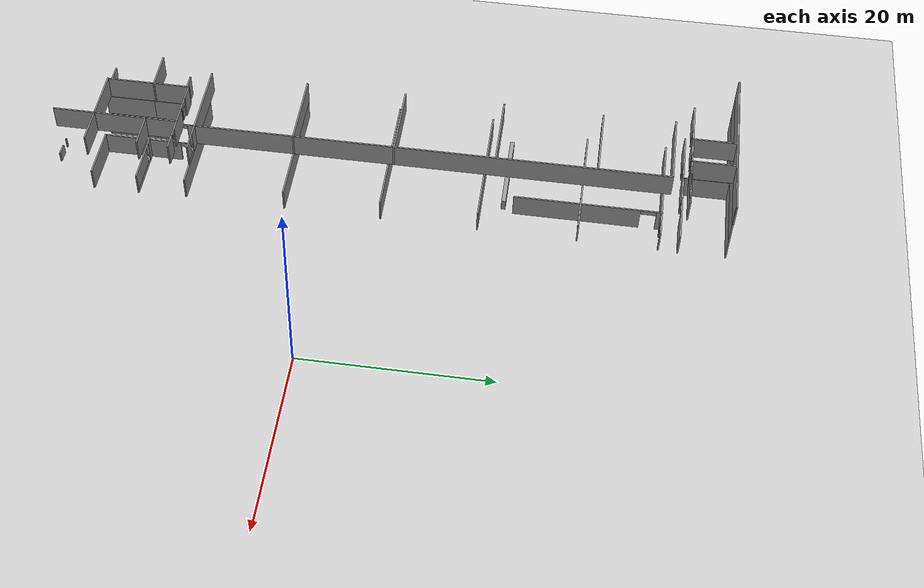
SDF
<sdf version="1.7">
 <world name="default">
  <model name="ground_plane">
   <static>1</static>
   <link name="link">
    <collision name="collision">
     <geometry><plane><normal>0 0 1</normal><size>100 100</size></plane></geometry>
     <surface><friction><ode><mu>100</mu><mu2>50</mu2></ode></friction></surface>
    </collision>
    <visual name="visual">
     <cast_shadows>0</cast_shadows>
     <geometry><plane><normal>0 0 1</normal><size>100 100</size></plane></geometry>
     <material>
      <script><uri>file://media/materials/scripts/gazebo.material</uri><name>Gazebo/Grey</name></script>
     </material>
    </visual>
   </link>
  </model>
  <model name="Anselm_Turmeda">
   <pose>-32.7988 -2.37459 0 0 -0 0</pose>
   <link name="Wall_108">
    <collision name="Wall_108_Collision">
     <geometry><box><size>4.5 0.15 2.5</size></box></geometry>
     <pose>0 0 1.25 0 -0 0</pose>
    </collision>
    <visual name="Wall_108_Visual">
     <pose>0 0 1.25 0 -0 0</pose>
     <geometry><box><size>4.5 0.15 2.5</size></box></geometry>
     <material>
      <script><uri>file://media/materials/scripts/gazebo.material</uri><name>Gazebo/Grey</name></script>
      <ambient>1 1 1 1</ambient>
     </material>
     <meta><layer>2</layer></meta>
    </visual>
    <pose>9.50762 -25.2569 5 0 -0 1.5708</pose>
   </link>
   <link name="Wall_109">
    <collision name="Wall_109_Collision">
     <geometry><box><size>3.86611 0.15 2.5</size></box></geometry>
     <pose>0 0 1.25 0 -0 0</pose>
    </collision>
    <visual name="Wall_109_Visual">
     <pose>0 0 1.25 0 -0 0</pose>
     <geometry><box><size>3.86611 0.15 2.5</size></box></geometry>
     <material>
      <script><uri>file://media/materials/scripts/gazebo.material</uri><name>Gazebo/Grey</name></script>
      <ambient>1 1 1 1</ambient>
     </material>
     <meta><layer>2</layer></meta>
    </visual>
    <pose>11.3657 -23.0772 5 0 -0 0.002537</pose>
   </link>
   <link name="Wall_111">
    <collision name="Wall_111_Collision">
     <geometry><box><size>5.5 0.15 2.5</size></box></geometry>
     <pose>0 0 1.25 0 -0 0</pose>
    </collision>
    <visual name="Wall_111_Visual">
     <pose>0 0 1.25 0 -0 0</pose>
     <geometry><box><size>5.5 0.15 2.5</size></box></geometry>
     <material>
      <script><uri>file://media/materials/scripts/gazebo.material</uri><name>Gazebo/Grey</name></script>
      <ambient>1 1 1 1</ambient>
     </material>
     <meta><layer>2</layer></meta>
    </visual>
    <pose>6.83262 -23.0819 5 0 -0 3.14159</pose>
   </link>
   <link name="Wall_113">
    <collision name="Wall_113_Collision">
     <geometry><box><size>9 0.15 2.5</size></box></geometry>
     <pose>0 0 1.25 0 -0 0</pose>
    </collision>
    <visual name="Wall_113_Visual">
     <pose>0 0 1.25 0 -0 0</pose>
     <geometry><box><size>9 0.15 2.5</size></box></geometry>
     <material>
      <script><uri>file://media/materials/scripts/gazebo.material</uri><name>Gazebo/Grey</name></script>
      <ambient>1 1 1 1</ambient>
     </material>
     <meta><layer>2</layer></meta>
    </visual>
    <pose>4.15762 -18.6569 5 0 -0 1.5708</pose>
   </link>
   <link name="Wall_118">
    <collision name="Wall_118_Collision">
     <geometry><box><size>8.95378 0.15 2.5</size></box></geometry>
     <pose>0 0 1.25 0 -0 0</pose>
    </collision>
    <visual name="Wall_118_Visual">
     <pose>0 0 1.25 0 -0 0</pose>
     <geometry><box><size>8.95378 0.15 2.5</size></box></geometry>
     <material>
      <script><uri>file://media/materials/scripts/gazebo.material</uri><name>Gazebo/Grey</name></script>
      <ambient>1 1 1 1</ambient>
     </material>
     <meta><layer>2</layer></meta>
    </visual>
    <pose>9.51774 -18.6801 5 0 -0 -1.5731</pose>
   </link>
   <link name="Wall_123">
    <collision name="Wall_123_Collision">
     <geometry><box><size>3.75 0.15 2.5</size></box></geometry>
     <pose>0 0 1.25 0 -0 0</pose>
    </collision>
    <visual name="Wall_123_Visual">
     <pose>0 0 1.25 0 -0 0</pose>
     <geometry><box><size>3.75 0.15 2.5</size></box></geometry>
     <material>
      <script><uri>file://media/materials/scripts/gazebo.material</uri><name>Gazebo/Grey</name></script>
      <ambient>1 1 1 1</ambient>
     </material>
     <meta><layer>2</layer></meta>
    </visual>
    <pose>11.3279 -17.5796 5 0 -0 0</pose>
   </link>
   <link name="Wall_127">
    <pose>8.70762 -14.2319 5 0 -0 0</pose>
    <visual name="Wall_127_Visual_0">
     <pose>-3.65426 0 1.25 0 -0 0</pose>
     <geometry><box><size>1.94148 0.15 2.5</size></box></geometry>
     <material>
      <script><uri>file://media/materials/scripts/gazebo.material</uri><name>Gazebo/Grey</name></script>
      <ambient>1 1 1 1</ambient>
     </material>
     <meta><layer>2</layer></meta>
    </visual>
    <collision name="Wall_127_Collision_0">
     <geometry><box><size>1.94148 0.15 2.5</size></box></geometry>
     <pose>-3.65426 0 1.25 0 -0 0</pose>
    </collision>
    <visual name="Wall_127_Visual_1">
     <pose>0.489756 0 1.25 0 -0 0</pose>
     <geometry><box><size>3.12036 0.15 2.5</size></box></geometry>
     <material>
      <script><uri>file://media/materials/scripts/gazebo.material</uri><name>Gazebo/Grey</name></script>
      <ambient>1 1 1 1</ambient>
     </material>
     <meta><layer>2</layer></meta>
    </visual>
    <collision name="Wall_127_Collision_1">
     <geometry><box><size>3.12036 0.15 2.5</size></box></geometry>
     <pose>0.489756 0 1.25 0 -0 0</pose>
    </collision>
    <visual name="Wall_127_Visual_2">
     <pose>3.78747 0 1.25 0 -0 0</pose>
     <geometry><box><size>1.67506 0.15 2.5</size></box></geometry>
     <material>
      <script><uri>file://media/materials/scripts/gazebo.material</uri><name>Gazebo/Grey</name></script>
      <ambient>1 1 1 1</ambient>
     </material>
     <meta><layer>2</layer></meta>
    </visual>
    <collision name="Wall_127_Collision_2">
     <geometry><box><size>1.67506 0.15 2.5</size></box></geometry>
     <pose>3.78747 0 1.25 0 -0 0</pose>
    </collision>
    <visual name="Wall_127_Visual_3">
     <pose>-1.87697 0 2.25 0 -0 0</pose>
     <geometry><box><size>1.61309 0.15 0.5</size></box></geometry>
     <material>
      <script><uri>file://media/materials/scripts/gazebo.material</uri><name>Gazebo/Grey</name></script>
      <ambient>1 1 1 1</ambient>
     </material>
     <meta><layer>2</layer></meta>
    </visual>
    <collision name="Wall_127_Collision_3">
     <geometry><box><size>1.61309 0.15 0.5</size></box></geometry>
     <pose>-1.87697 0 2.25 0 -0 0</pose>
    </collision>
    <visual name="Wall_127_Visual_4">
     <pose>2.49994 0 2.25 0 -0 0</pose>
     <geometry><box><size>0.9 0.15 0.5</size></box></geometry>
     <material>
      <script><uri>file://media/materials/scripts/gazebo.material</uri><name>Gazebo/Grey</name></script>
      <ambient>1 1 1 1</ambient>
     </material>
     <meta><layer>2</layer></meta>
    </visual>
    <collision name="Wall_127_Collision_4">
     <geometry><box><size>0.9 0.15 0.5</size></box></geometry>
     <pose>2.49994 0 2.25 0 -0 0</pose>
    </collision>
   </link>
   <link name="Wall_136">
    <collision name="Wall_136_Collision">
     <geometry><box><size>2 0.15 1.3</size></box></geometry>
     <pose>0 0 0.65 0 -0 0</pose>
    </collision>
    <visual name="Wall_136_Visual">
     <pose>0 0 0.65 0 -0 0</pose>
     <geometry><box><size>2 0.15 1.3</size></box></geometry>
     <material>
      <script><uri>file://media/materials/scripts/gazebo.material</uri><name>Gazebo/Grey</name></script>
      <ambient>1 1 1 1</ambient>
     </material>
     <meta><layer>2</layer></meta>
    </visual>
    <pose>2.1346 -23.1338 5 0 -0 0</pose>
   </link>
   <link name="Wall_138">
    <collision name="Wall_138_Collision">
     <geometry><box><size>5.38746 0.15 2.5</size></box></geometry>
     <pose>0 0 1.25 0 -0 0</pose>
    </collision>
    <visual name="Wall_138_Visual">
     <pose>0 0 1.25 0 -0 0</pose>
     <geometry><box><size>5.38746 0.15 2.5</size></box></geometry>
     <material>
      <script><uri>file://media/materials/scripts/gazebo.material</uri><name>Gazebo/Grey</name></script>
      <ambient>1 1 1 1</ambient>
     </material>
     <meta><layer>0</layer></meta>
    </visual>
    <pose>3.22999 -20.7685 0 0 -0 -1.5708</pose>
   </link>
   <link name="Wall_139">
    <collision name="Wall_139_Collision">
     <geometry><box><size>1.75 0.15 2.5</size></box></geometry>
     <pose>0 0 1.25 0 -0 0</pose>
    </collision>
    <visual name="Wall_139_Visual">
     <pose>0 0 1.25 0 -0 0</pose>
     <geometry><box><size>1.75 0.15 2.5</size></box></geometry>
     <material>
      <script><uri>file://media/materials/scripts/gazebo.material</uri><name>Gazebo/Grey</name></script>
      <ambient>1 1 1 1</ambient>
     </material>
     <meta><layer>0</layer></meta>
    </visual>
    <pose>4.02999 -23.4033 0 0 -0 0</pose>
   </link>
   <link name="Wall_140">
    <collision name="Wall_140_Collision">
     <geometry><box><size>5.38746 0.15 2.5</size></box></geometry>
     <pose>0 0 1.25 0 -0 0</pose>
    </collision>
    <visual name="Wall_140_Visual">
     <pose>0 0 1.25 0 -0 0</pose>
     <geometry><box><size>5.38746 0.15 2.5</size></box></geometry>
     <material>
      <script><uri>file://media/materials/scripts/gazebo.material</uri><name>Gazebo/Grey</name></script>
      <ambient>1 1 1 1</ambient>
     </material>
     <meta><layer>0</layer></meta>
    </visual>
    <pose>4.82999 -20.7685 0 0 -0 1.5708</pose>
   </link>
   <link name="Wall_141">
    <collision name="Wall_141_Collision">
     <geometry><box><size>1.75 0.15 2.5</size></box></geometry>
     <pose>0 0 1.25 0 -0 0</pose>
    </collision>
    <visual name="Wall_141_Visual">
     <pose>0 0 1.25 0 -0 0</pose>
     <geometry><box><size>1.75 0.15 2.5</size></box></geometry>
     <material>
      <script><uri>file://media/materials/scripts/gazebo.material</uri><name>Gazebo/Grey</name></script>
      <ambient>1 1 1 1</ambient>
     </material>
     <meta><layer>0</layer></meta>
    </visual>
    <pose>4.02999 -18.1497 0 0 -0 3.14159</pose>
   </link>
   <link name="Wall_159">
    <collision name="Wall_159_Collision">
     <geometry><box><size>5.5 0.15 2.5</size></box></geometry>
     <pose>0 0 1.25 0 -0 0</pose>
    </collision>
    <visual name="Wall_159_Visual">
     <pose>0 0 1.25 0 -0 0</pose>
     <geometry><box><size>5.5 0.15 2.5</size></box></geometry>
     <material>
      <script><uri>file://media/materials/scripts/gazebo.material</uri><name>Gazebo/Grey</name></script>
      <ambient>1 1 1 1</ambient>
     </material>
     <meta><layer>1</layer></meta>
    </visual>
    <pose>3.17231 -20.8133 2.5 0 -0 -1.5708</pose>
   </link>
   <link name="Wall_160">
    <collision name="Wall_160_Collision">
     <geometry><box><size>1.2 0.15 2.5</size></box></geometry>
     <pose>0 0 1.25 0 -0 0</pose>
    </collision>
    <visual name="Wall_160_Visual">
     <pose>0 0 1.25 0 -0 0</pose>
     <geometry><box><size>1.2 0.15 2.5</size></box></geometry>
     <material>
      <script><uri>file://media/materials/scripts/gazebo.material</uri><name>Gazebo/Grey</name></script>
      <ambient>1 1 1 1</ambient>
     </material>
     <meta><layer>1</layer></meta>
    </visual>
    <pose>3.69731 -23.4883 2.5 0 -0 0</pose>
   </link>
   <link name="Wall_164">
    <collision name="Wall_164_Collision">
     <geometry><box><size>5.5 0.15 2.5</size></box></geometry>
     <pose>0 0 1.25 0 -0 0</pose>
    </collision>
    <visual name="Wall_164_Visual">
     <pose>0 0 1.25 0 -0 0</pose>
     <geometry><box><size>5.5 0.15 2.5</size></box></geometry>
     <material>
      <script><uri>file://media/materials/scripts/gazebo.material</uri><name>Gazebo/Grey</name></script>
      <ambient>1 1 1 1</ambient>
     </material>
     <meta><layer>1</layer></meta>
    </visual>
    <pose>4.22231 -20.8133 2.5 0 -0 1.5708</pose>
   </link>
   <link name="Wall_166">
    <collision name="Wall_166_Collision">
     <geometry><box><size>3 0.15 2.5</size></box></geometry>
     <pose>0 0 1.25 0 -0 0</pose>
    </collision>
    <visual name="Wall_166_Visual">
     <pose>0 0 1.25 0 -0 0</pose>
     <geometry><box><size>3 0.15 2.5</size></box></geometry>
     <material>
      <script><uri>file://media/materials/scripts/gazebo.material</uri><name>Gazebo/Grey</name></script>
      <ambient>1 1 1 1</ambient>
     </material>
     <meta><layer>1</layer></meta>
    </visual>
    <pose>4.22231 -16.7133 2.5 0 -0 1.5708</pose>
   </link>
   <link name="Wall_167">
    <collision name="Wall_167_Collision">
     <geometry><box><size>4.35 0.15 2.5</size></box></geometry>
     <pose>0 0 1.25 0 -0 0</pose>
    </collision>
    <visual name="Wall_167_Visual">
     <pose>0 0 1.25 0 -0 0</pose>
     <geometry><box><size>4.35 0.15 2.5</size></box></geometry>
     <material>
      <script><uri>file://media/materials/scripts/gazebo.material</uri><name>Gazebo/Grey</name></script>
      <ambient>1 1 1 1</ambient>
     </material>
     <meta><layer>1</layer></meta>
    </visual>
    <pose>2.12231 -15.2883 2.5 0 -0 3.14159</pose>
   </link>
   <link name="Wall_174">
    <collision name="Wall_174_Collision">
     <geometry><box><size>4.25 0.15 2.5</size></box></geometry>
     <pose>0 0 1.25 0 -0 0</pose>
    </collision>
    <visual name="Wall_174_Visual">
     <pose>0 0 1.25 0 -0 0</pose>
     <geometry><box><size>4.25 0.15 2.5</size></box></geometry>
     <material>
      <script><uri>file://media/materials/scripts/gazebo.material</uri><name>Gazebo/Grey</name></script>
      <ambient>1 1 1 1</ambient>
     </material>
     <meta><layer>2</layer></meta>
    </visual>
    <pose>2.1416 -18.0224 5 0 -0 0</pose>
   </link>
   <link name="Wall_288">
    <pose>7.47873 -12.2331 5 0 -0 0</pose>
    <visual name="Wall_288_Visual_0">
     <pose>-1.00158 0 1.25 0 -0 0</pose>
     <geometry><box><size>9.49685 0.15 2.5</size></box></geometry>
     <material>
      <script><uri>file://media/materials/scripts/gazebo.material</uri><name>Gazebo/Grey</name></script>
      <ambient>1 1 1 1</ambient>
     </material>
     <meta><layer>2</layer></meta>
    </visual>
    <collision name="Wall_288_Collision_0">
     <geometry><box><size>9.49685 0.15 2.5</size></box></geometry>
     <pose>-1.00158 0 1.25 0 -0 0</pose>
    </collision>
    <visual name="Wall_288_Visual_1">
     <pose>4.74843 0 0.25 0 -0 0</pose>
     <geometry><box><size>2.00315 0.15 0.5</size></box></geometry>
     <material>
      <script><uri>file://media/materials/scripts/gazebo.material</uri><name>Gazebo/Grey</name></script>
      <ambient>1 1 1 1</ambient>
     </material>
     <meta><layer>2</layer></meta>
    </visual>
    <collision name="Wall_288_Collision_1">
     <geometry><box><size>2.00315 0.15 0.5</size></box></geometry>
     <pose>4.74843 0 0.25 0 -0 0</pose>
    </collision>
    <visual name="Wall_288_Visual_2">
     <pose>5.14842 0 1.5 0 -0 0</pose>
     <geometry><box><size>1.20315 0.15 2</size></box></geometry>
     <material>
      <script><uri>file://media/materials/scripts/gazebo.material</uri><name>Gazebo/Grey</name></script>
      <ambient>1 1 1 1</ambient>
     </material>
     <meta><layer>2</layer></meta>
    </visual>
    <collision name="Wall_288_Collision_2">
     <geometry><box><size>1.20315 0.15 2</size></box></geometry>
     <pose>5.14842 0 1.5 0 -0 0</pose>
    </collision>
    <visual name="Wall_288_Visual_3">
     <pose>4.14685 0 1.9 0 -0 0</pose>
     <geometry><box><size>0.8 0.15 1.2</size></box></geometry>
     <material>
      <script><uri>file://media/materials/scripts/gazebo.material</uri><name>Gazebo/Grey</name></script>
      <ambient>1 1 1 1</ambient>
     </material>
     <meta><layer>2</layer></meta>
    </visual>
    <collision name="Wall_288_Collision_3">
     <geometry><box><size>0.8 0.15 1.2</size></box></geometry>
     <pose>4.14685 0 1.9 0 -0 0</pose>
    </collision>
   </link>
   <link name="Wall_292">
    <collision name="Wall_292_Collision">
     <geometry><box><size>8.25 0.15 2.5</size></box></geometry>
     <pose>0 0 1.25 0 -0 0</pose>
    </collision>
    <visual name="Wall_292_Visual">
     <pose>0 0 1.25 0 -0 0</pose>
     <geometry><box><size>8.25 0.15 2.5</size></box></geometry>
     <material>
      <script><uri>file://media/materials/scripts/gazebo.material</uri><name>Gazebo/Grey</name></script>
      <ambient>1 1 1 1</ambient>
     </material>
     <meta><layer>2</layer></meta>
    </visual>
    <pose>5.85373 37.3669 5 0 -0 0</pose>
   </link>
   <link name="Wall_293">
    <collision name="Wall_293_Collision">
     <geometry><box><size>49.75 0.15 2.5</size></box></geometry>
     <pose>0 0 1.25 0 -0 0</pose>
    </collision>
    <visual name="Wall_293_Visual">
     <pose>0 0 1.25 0 -0 0</pose>
     <geometry><box><size>49.75 0.15 2.5</size></box></geometry>
     <material>
      <script><uri>file://media/materials/scripts/gazebo.material</uri><name>Gazebo/Grey</name></script>
      <ambient>1 1 1 1</ambient>
     </material>
     <meta><layer>2</layer></meta>
    </visual>
    <pose>9.90373 12.5669 5 0 -0 -1.5708</pose>
   </link>
   <link name="Wall_296">
    <collision name="Wall_296_Collision">
     <geometry><box><size>18.75 0.15 2.5</size></box></geometry>
     <pose>0 0 1.25 0 -0 0</pose>
    </collision>
    <visual name="Wall_296_Visual">
     <pose>0 0 1.25 0 -0 0</pose>
     <geometry><box><size>18.75 0.15 2.5</size></box></geometry>
     <material>
      <script><uri>file://media/materials/scripts/gazebo.material</uri><name>Gazebo/Grey</name></script>
      <ambient>1 1 1 1</ambient>
     </material>
     <meta><layer>2</layer></meta>
    </visual>
    <pose>3.95762 43.8181 5 0 -0 3.14159</pose>
   </link>
   <link name="Wall_317">
    <collision name="Wall_317_Collision">
     <geometry><box><size>8.25 0.15 2.5</size></box></geometry>
     <pose>0 0 1.25 0 -0 0</pose>
    </collision>
    <visual name="Wall_317_Visual">
     <pose>0 0 1.25 0 -0 0</pose>
     <geometry><box><size>8.25 0.15 2.5</size></box></geometry>
     <material>
      <script><uri>file://media/materials/scripts/gazebo.material</uri><name>Gazebo/Grey</name></script>
      <ambient>1 1 1 1</ambient>
     </material>
     <meta><layer>2</layer></meta>
    </visual>
    <pose>5.86435 -1.77019 5 0 -0 0</pose>
   </link>
   <link name="Wall_331">
    <collision name="Wall_331_Collision">
     <geometry><box><size>8.25 0.15 2.5</size></box></geometry>
     <pose>0 0 1.25 0 -0 0</pose>
    </collision>
    <visual name="Wall_331_Visual">
     <pose>0 0 1.25 0 -0 0</pose>
     <geometry><box><size>8.25 0.15 2.5</size></box></geometry>
     <material>
      <script><uri>file://media/materials/scripts/gazebo.material</uri><name>Gazebo/Grey</name></script>
      <ambient>1 1 1 1</ambient>
     </material>
     <meta><layer>2</layer></meta>
    </visual>
    <pose>5.88502 8.80092 5 0 -0 0</pose>
   </link>
   <link name="Wall_337">
    <collision name="Wall_337_Collision">
     <geometry><box><size>8.2 0.15 2.5</size></box></geometry>
     <pose>0 0 1.25 0 -0 0</pose>
    </collision>
    <visual name="Wall_337_Visual">
     <pose>0 0 1.25 0 -0 0</pose>
     <geometry><box><size>8.2 0.15 2.5</size></box></geometry>
     <material>
      <script><uri>file://media/materials/scripts/gazebo.material</uri><name>Gazebo/Grey</name></script>
      <ambient>1 1 1 1</ambient>
     </material>
     <meta><layer>2</layer></meta>
    </visual>
    <pose>5.85075 19.3252 5 0 -0 3.14159</pose>
   </link>
   <link name="Wall_34">
    <collision name="Wall_34_Collision">
     <geometry><box><size>18.75 0.15 2.5</size></box></geometry>
     <pose>0 0 1.25 0 -0 0</pose>
    </collision>
    <visual name="Wall_34_Visual">
     <pose>0 0 1.25 0 -0 0</pose>
     <geometry><box><size>18.75 0.15 2.5</size></box></geometry>
     <material>
      <script><uri>file://media/materials/scripts/gazebo.material</uri><name>Gazebo/Grey</name></script>
      <ambient>1 1 1 1</ambient>
     </material>
     <meta><layer>1</layer></meta>
    </visual>
    <pose>3.92372 43.7775 2.5 0 -0 3.14159</pose>
   </link>
   <link name="Wall_345">
    <collision name="Wall_345_Collision">
     <geometry><box><size>8 0.15 2.5</size></box></geometry>
     <pose>0 0 1.25 0 -0 0</pose>
    </collision>
    <visual name="Wall_345_Visual">
     <pose>0 0 1.25 0 -0 0</pose>
     <geometry><box><size>8 0.15 2.5</size></box></geometry>
     <material>
      <script><uri>file://media/materials/scripts/gazebo.material</uri><name>Gazebo/Grey</name></script>
      <ambient>1 1 1 1</ambient>
     </material>
     <meta><layer>2</layer></meta>
    </visual>
    <pose>5.86895 29.8064 5 0 -0 0</pose>
   </link>
   <link name="Wall_348">
    <pose>6.29714 39.203 5 0 -0 0</pose>
    <visual name="Wall_348_Visual_0">
     <pose>-5.28289 0 1.25 0 -0 0</pose>
     <geometry><box><size>3.43422 0.15 2.5</size></box></geometry>
     <material>
      <script><uri>file://media/materials/scripts/gazebo.material</uri><name>Gazebo/Grey</name></script>
      <ambient>1 1 1 1</ambient>
     </material>
     <meta><layer>2</layer></meta>
    </visual>
    <collision name="Wall_348_Collision_0">
     <geometry><box><size>3.43422 0.15 2.5</size></box></geometry>
     <pose>-5.28289 0 1.25 0 -0 0</pose>
    </collision>
    <visual name="Wall_348_Visual_1">
     <pose>-1.12725 0 1.25 0 -0 0</pose>
     <geometry><box><size>2.41151 0.15 2.5</size></box></geometry>
     <material>
      <script><uri>file://media/materials/scripts/gazebo.material</uri><name>Gazebo/Grey</name></script>
      <ambient>1 1 1 1</ambient>
     </material>
     <meta><layer>2</layer></meta>
    </visual>
    <collision name="Wall_348_Collision_1">
     <geometry><box><size>2.41151 0.15 2.5</size></box></geometry>
     <pose>-1.12725 0 1.25 0 -0 0</pose>
    </collision>
    <visual name="Wall_348_Visual_2">
     <pose>4.06872 0 1.25 0 -0 0</pose>
     <geometry><box><size>5.86257 0.15 2.5</size></box></geometry>
     <material>
      <script><uri>file://media/materials/scripts/gazebo.material</uri><name>Gazebo/Grey</name></script>
      <ambient>1 1 1 1</ambient>
     </material>
     <meta><layer>2</layer></meta>
    </visual>
    <collision name="Wall_348_Collision_2">
     <geometry><box><size>5.86257 0.15 2.5</size></box></geometry>
     <pose>4.06872 0 1.25 0 -0 0</pose>
    </collision>
    <visual name="Wall_348_Visual_3">
     <pose>4.59441 0 1.25 0 -0 0</pose>
     <geometry><box><size>4.81119 0.15 2.5</size></box></geometry>
     <material>
      <script><uri>file://media/materials/scripts/gazebo.material</uri><name>Gazebo/Grey</name></script>
      <ambient>1 1 1 1</ambient>
     </material>
     <meta><layer>2</layer></meta>
    </visual>
    <collision name="Wall_348_Collision_3">
     <geometry><box><size>4.81119 0.15 2.5</size></box></geometry>
     <pose>4.59441 0 1.25 0 -0 0</pose>
    </collision>
    <visual name="Wall_348_Visual_4">
     <pose>-2.94939 0 2.25 0 -0 0</pose>
     <geometry><box><size>1.23279 0.15 0.5</size></box></geometry>
     <material>
      <script><uri>file://media/materials/scripts/gazebo.material</uri><name>Gazebo/Grey</name></script>
      <ambient>1 1 1 1</ambient>
     </material>
     <meta><layer>2</layer></meta>
    </visual>
    <collision name="Wall_348_Collision_4">
     <geometry><box><size>1.23279 0.15 0.5</size></box></geometry>
     <pose>-2.94939 0 2.25 0 -0 0</pose>
    </collision>
    <visual name="Wall_348_Visual_5">
     <pose>0.591968 0 2.25 0 -0 0</pose>
     <geometry><box><size>1.02692 0.15 0.5</size></box></geometry>
     <material>
      <script><uri>file://media/materials/scripts/gazebo.material</uri><name>Gazebo/Grey</name></script>
      <ambient>1 1 1 1</ambient>
     </material>
     <meta><layer>2</layer></meta>
    </visual>
    <collision name="Wall_348_Collision_5">
     <geometry><box><size>1.02692 0.15 0.5</size></box></geometry>
     <pose>0.591968 0 2.25 0 -0 0</pose>
    </collision>
   </link>
   <link name="Wall_350">
    <collision name="Wall_350_Collision">
     <geometry><box><size>4.75 0.15 2.5</size></box></geometry>
     <pose>0 0 1.25 0 -0 0</pose>
    </collision>
    <visual name="Wall_350_Visual">
     <pose>0 0 1.25 0 -0 0</pose>
     <geometry><box><size>4.75 0.15 2.5</size></box></geometry>
     <material>
      <script><uri>file://media/materials/scripts/gazebo.material</uri><name>Gazebo/Grey</name></script>
      <ambient>1 1 1 1</ambient>
     </material>
     <meta><layer>2</layer></meta>
    </visual>
    <pose>4.07065 41.503 5 0 -0 -1.5708</pose>
   </link>
   <link name="Wall_352">
    <collision name="Wall_352_Collision">
     <geometry><box><size>4.75 0.15 2.5</size></box></geometry>
     <pose>0 0 1.25 0 -0 0</pose>
    </collision>
    <visual name="Wall_352_Visual">
     <pose>0 0 1.25 0 -0 0</pose>
     <geometry><box><size>4.75 0.15 2.5</size></box></geometry>
     <material>
      <script><uri>file://media/materials/scripts/gazebo.material</uri><name>Gazebo/Grey</name></script>
      <ambient>1 1 1 1</ambient>
     </material>
     <meta><layer>2</layer></meta>
    </visual>
    <pose>7.33488 41.503 5 0 -0 -1.5708</pose>
   </link>
   <link name="Wall_453">
    <pose>8.7461 -27.7018 0 0 -0 -0.017648</pose>
    <visual name="Wall_453_Visual_0">
     <pose>-1.08593 0 0.6 0 -0 0</pose>
     <geometry><box><size>0.131085 0.15 1.2</size></box></geometry>
     <material>
      <script><uri>file://media/materials/scripts/gazebo.material</uri><name>Gazebo/Grey</name></script>
      <ambient>1 1 1 1</ambient>
     </material>
     <meta><layer>0</layer></meta>
    </visual>
    <collision name="Wall_453_Collision_0">
     <geometry><box><size>0.131085 0.15 1.2</size></box></geometry>
     <pose>-1.08593 0 0.6 0 -0 0</pose>
    </collision>
    <visual name="Wall_453_Visual_1">
     <pose>0.515543 0 0.6 0 -0 0</pose>
     <geometry><box><size>1.27185 0.15 1.2</size></box></geometry>
     <material>
      <script><uri>file://media/materials/scripts/gazebo.material</uri><name>Gazebo/Grey</name></script>
      <ambient>1 1 1 1</ambient>
     </material>
     <meta><layer>0</layer></meta>
    </visual>
    <collision name="Wall_453_Collision_1">
     <geometry><box><size>1.27185 0.15 1.2</size></box></geometry>
     <pose>0.515543 0 0.6 0 -0 0</pose>
    </collision>
   </link>
   <link name="Wall_487">
    <collision name="Wall_487_Collision">
     <geometry><box><size>5.75 0.15 2.5</size></box></geometry>
     <pose>0 0 1.25 0 -0 0</pose>
    </collision>
    <visual name="Wall_487_Visual">
     <pose>0 0 1.25 0 -0 0</pose>
     <geometry><box><size>5.75 0.15 2.5</size></box></geometry>
     <material>
      <script><uri>file://media/materials/scripts/gazebo.material</uri><name>Gazebo/Grey</name></script>
      <ambient>1 1 1 1</ambient>
     </material>
     <meta><layer>0</layer></meta>
    </visual>
    <pose>10.4237 -23.0725 0 0 -0 3.14159</pose>
   </link>
   <link name="Wall_488">
    <collision name="Wall_488_Collision">
     <geometry><box><size>5 0.15 2.5</size></box></geometry>
     <pose>0 0 1.25 0 -0 0</pose>
    </collision>
    <visual name="Wall_488_Visual">
     <pose>0 0 1.25 0 -0 0</pose>
     <geometry><box><size>5 0.15 2.5</size></box></geometry>
     <material>
      <script><uri>file://media/materials/scripts/gazebo.material</uri><name>Gazebo/Grey</name></script>
      <ambient>1 1 1 1</ambient>
     </material>
     <meta><layer>0</layer></meta>
    </visual>
    <pose>7.62372 -20.6475 0 0 -0 1.5708</pose>
   </link>
   <link name="Wall_489">
    <pose>10.4237 -18.2225 0 0 -0 0</pose>
    <visual name="Wall_489_Visual_0">
     <pose>-2.47666 0 1.25 0 -0 0</pose>
     <geometry><box><size>0.796684 0.15 2.5</size></box></geometry>
     <material>
      <script><uri>file://media/materials/scripts/gazebo.material</uri><name>Gazebo/Grey</name></script>
      <ambient>1 1 1 1</ambient>
     </material>
     <meta><layer>0</layer></meta>
    </visual>
    <collision name="Wall_489_Collision_0">
     <geometry><box><size>0.796684 0.15 2.5</size></box></geometry>
     <pose>-2.47666 0 1.25 0 -0 0</pose>
    </collision>
    <visual name="Wall_489_Visual_1">
     <pose>0.398342 0 0.25 0 -0 0</pose>
     <geometry><box><size>4.95332 0.15 0.5</size></box></geometry>
     <material>
      <script><uri>file://media/materials/scripts/gazebo.material</uri><name>Gazebo/Grey</name></script>
      <ambient>1 1 1 1</ambient>
     </material>
     <meta><layer>0</layer></meta>
    </visual>
    <collision name="Wall_489_Collision_1">
     <geometry><box><size>4.95332 0.15 0.5</size></box></geometry>
     <pose>0.398342 0 0.25 0 -0 0</pose>
    </collision>
    <visual name="Wall_489_Visual_2">
     <pose>0.798342 0 1.5 0 -0 0</pose>
     <geometry><box><size>4.15332 0.15 2</size></box></geometry>
     <material>
      <script><uri>file://media/materials/scripts/gazebo.material</uri><name>Gazebo/Grey</name></script>
      <ambient>1 1 1 1</ambient>
     </material>
     <meta><layer>0</layer></meta>
    </visual>
    <collision name="Wall_489_Collision_2">
     <geometry><box><size>4.15332 0.15 2</size></box></geometry>
     <pose>0.798342 0 1.5 0 -0 0</pose>
    </collision>
    <visual name="Wall_489_Visual_3">
     <pose>-1.67832 0 1.9 0 -0 0</pose>
     <geometry><box><size>0.8 0.15 1.2</size></box></geometry>
     <material>
      <script><uri>file://media/materials/scripts/gazebo.material</uri><name>Gazebo/Grey</name></script>
      <ambient>1 1 1 1</ambient>
     </material>
     <meta><layer>0</layer></meta>
    </visual>
    <collision name="Wall_489_Collision_3">
     <geometry><box><size>0.8 0.15 1.2</size></box></geometry>
     <pose>-1.67832 0 1.9 0 -0 0</pose>
    </collision>
   </link>
   <link name="Wall_491">
    <collision name="Wall_491_Collision">
     <geometry><box><size>2.25 0.15 2.5</size></box></geometry>
     <pose>0 0 1.25 0 -0 0</pose>
    </collision>
    <visual name="Wall_491_Visual">
     <pose>0 0 1.25 0 -0 0</pose>
     <geometry><box><size>2.25 0.15 2.5</size></box></geometry>
     <material>
      <script><uri>file://media/materials/scripts/gazebo.material</uri><name>Gazebo/Grey</name></script>
      <ambient>1 1 1 1</ambient>
     </material>
     <meta><layer>0</layer></meta>
    </visual>
    <pose>2.17999 -18.1497 0 0 -0 3.14159</pose>
   </link>
   <link name="Wall_493">
    <collision name="Wall_493_Collision">
     <geometry><box><size>12.25 0.15 2.5</size></box></geometry>
     <pose>0 0 1.25 0 -0 0</pose>
    </collision>
    <visual name="Wall_493_Visual">
     <pose>0 0 1.25 0 -0 0</pose>
     <geometry><box><size>12.25 0.15 2.5</size></box></geometry>
     <material>
      <script><uri>file://media/materials/scripts/gazebo.material</uri><name>Gazebo/Grey</name></script>
      <ambient>1 1 1 1</ambient>
     </material>
     <meta><layer>0</layer></meta>
    </visual>
    <pose>7.02907 -13.0674 0 0 -0 0</pose>
   </link>
   <link name="Wall_503">
    <pose>6.87748 36.8636 0 0 -0 0</pose>
    <visual name="Wall_503_Visual_0">
     <pose>-0.91274 0 1.25 0 -0 0</pose>
     <geometry><box><size>10.9245 0.15 2.5</size></box></geometry>
     <material>
      <script><uri>file://media/materials/scripts/gazebo.material</uri><name>Gazebo/Grey</name></script>
      <ambient>1 1 1 1</ambient>
     </material>
     <meta><layer>0</layer></meta>
    </visual>
    <collision name="Wall_503_Collision_0">
     <geometry><box><size>10.9245 0.15 2.5</size></box></geometry>
     <pose>-0.91274 0 1.25 0 -0 0</pose>
    </collision>
    <visual name="Wall_503_Visual_1">
     <pose>6.19023 0 1.25 0 -0 0</pose>
     <geometry><box><size>0.369546 0.15 2.5</size></box></geometry>
     <material>
      <script><uri>file://media/materials/scripts/gazebo.material</uri><name>Gazebo/Grey</name></script>
      <ambient>1 1 1 1</ambient>
     </material>
     <meta><layer>0</layer></meta>
    </visual>
    <collision name="Wall_503_Collision_1">
     <geometry><box><size>0.369546 0.15 2.5</size></box></geometry>
     <pose>6.19023 0 1.25 0 -0 0</pose>
    </collision>
    <visual name="Wall_503_Visual_2">
     <pose>5.27749 0 2.25 0 -0 0</pose>
     <geometry><box><size>1.45593 0.15 0.5</size></box></geometry>
     <material>
      <script><uri>file://media/materials/scripts/gazebo.material</uri><name>Gazebo/Grey</name></script>
      <ambient>1 1 1 1</ambient>
     </material>
     <meta><layer>0</layer></meta>
    </visual>
    <collision name="Wall_503_Collision_2">
     <geometry><box><size>1.45593 0.15 0.5</size></box></geometry>
     <pose>5.27749 0 2.25 0 -0 0</pose>
    </collision>
   </link>
   <link name="Wall_506">
    <pose>6.09981 38.8761 0 0 -0 0</pose>
    <visual name="Wall_506_Visual_0">
     <pose>-5.30619 0 1.25 0 -0 0</pose>
     <geometry><box><size>3.88763 0.15 2.5</size></box></geometry>
     <material>
      <script><uri>file://media/materials/scripts/gazebo.material</uri><name>Gazebo/Grey</name></script>
      <ambient>1 1 1 1</ambient>
     </material>
     <meta><layer>0</layer></meta>
    </visual>
    <collision name="Wall_506_Collision_0">
     <geometry><box><size>3.88763 0.15 2.5</size></box></geometry>
     <pose>-5.30619 0 1.25 0 -0 0</pose>
    </collision>
    <visual name="Wall_506_Visual_1">
     <pose>-0.051662 0 1.25 0 -0 0</pose>
     <geometry><box><size>3.4522 0.15 2.5</size></box></geometry>
     <material>
      <script><uri>file://media/materials/scripts/gazebo.material</uri><name>Gazebo/Grey</name></script>
      <ambient>1 1 1 1</ambient>
     </material>
     <meta><layer>0</layer></meta>
    </visual>
    <collision name="Wall_506_Collision_1">
     <geometry><box><size>3.4522 0.15 2.5</size></box></geometry>
     <pose>-0.051662 0 1.25 0 -0 0</pose>
    </collision>
    <visual name="Wall_506_Visual_2">
     <pose>5.41345 0 1.25 0 -0 0</pose>
     <geometry><box><size>3.67309 0.15 2.5</size></box></geometry>
     <material>
      <script><uri>file://media/materials/scripts/gazebo.material</uri><name>Gazebo/Grey</name></script>
      <ambient>1 1 1 1</ambient>
     </material>
     <meta><layer>0</layer></meta>
    </visual>
    <collision name="Wall_506_Collision_2">
     <geometry><box><size>3.67309 0.15 2.5</size></box></geometry>
     <pose>5.41345 0 1.25 0 -0 0</pose>
    </collision>
    <visual name="Wall_506_Visual_3">
     <pose>-2.57007 0 2.25 0 -0 0</pose>
     <geometry><box><size>1.58462 0.15 0.5</size></box></geometry>
     <material>
      <script><uri>file://media/materials/scripts/gazebo.material</uri><name>Gazebo/Grey</name></script>
      <ambient>1 1 1 1</ambient>
     </material>
     <meta><layer>0</layer></meta>
    </visual>
    <collision name="Wall_506_Collision_3">
     <geometry><box><size>1.58462 0.15 0.5</size></box></geometry>
     <pose>-2.57007 0 2.25 0 -0 0</pose>
    </collision>
    <visual name="Wall_506_Visual_4">
     <pose>2.62567 0 2.25 0 -0 0</pose>
     <geometry><box><size>1.90247 0.15 0.5</size></box></geometry>
     <material>
      <script><uri>file://media/materials/scripts/gazebo.material</uri><name>Gazebo/Grey</name></script>
      <ambient>1 1 1 1</ambient>
     </material>
     <meta><layer>0</layer></meta>
    </visual>
    <collision name="Wall_506_Collision_4">
     <geometry><box><size>1.90247 0.15 0.5</size></box></geometry>
     <pose>2.62567 0 2.25 0 -0 0</pose>
    </collision>
   </link>
   <link name="Wall_519">
    <collision name="Wall_519_Collision">
     <geometry><box><size>5 0.15 2.5</size></box></geometry>
     <pose>0 0 1.25 0 -0 0</pose>
    </collision>
    <visual name="Wall_519_Visual">
     <pose>0 0 1.25 0 -0 0</pose>
     <geometry><box><size>5 0.15 2.5</size></box></geometry>
     <material>
      <script><uri>file://media/materials/scripts/gazebo.material</uri><name>Gazebo/Grey</name></script>
      <ambient>1 1 1 1</ambient>
     </material>
     <meta><layer>0</layer></meta>
    </visual>
    <pose>4.83785 41.3158 0 0 -0 1.5708</pose>
   </link>
   <link name="Wall_521">
    <pose>6.88346 28.4748 0 0 -0 0</pose>
    <visual name="Wall_521_Visual_0">
     <pose>-4.95694 0 1.25 0 -0 0</pose>
     <geometry><box><size>2.83612 0.15 2.5</size></box></geometry>
     <material>
      <script><uri>file://media/materials/scripts/gazebo.material</uri><name>Gazebo/Grey</name></script>
      <ambient>1 1 1 1</ambient>
     </material>
     <meta><layer>0</layer></meta>
    </visual>
    <collision name="Wall_521_Collision_0">
     <geometry><box><size>2.83612 0.15 2.5</size></box></geometry>
     <pose>-4.95694 0 1.25 0 -0 0</pose>
    </collision>
    <visual name="Wall_521_Visual_1">
     <pose>2.81257 0 1.25 0 -0 0</pose>
     <geometry><box><size>4.2317 0.15 2.5</size></box></geometry>
     <material>
      <script><uri>file://media/materials/scripts/gazebo.material</uri><name>Gazebo/Grey</name></script>
      <ambient>1 1 1 1</ambient>
     </material>
     <meta><layer>0</layer></meta>
    </visual>
    <collision name="Wall_521_Collision_1">
     <geometry><box><size>4.2317 0.15 2.5</size></box></geometry>
     <pose>2.81257 0 1.25 0 -0 0</pose>
    </collision>
    <visual name="Wall_521_Visual_2">
     <pose>6.20862 0 1.25 0 -0 0</pose>
     <geometry><box><size>0.332759 0.15 2.5</size></box></geometry>
     <material>
      <script><uri>file://media/materials/scripts/gazebo.material</uri><name>Gazebo/Grey</name></script>
      <ambient>1 1 1 1</ambient>
     </material>
     <meta><layer>0</layer></meta>
    </visual>
    <collision name="Wall_521_Collision_2">
     <geometry><box><size>0.332759 0.15 2.5</size></box></geometry>
     <pose>6.20862 0 1.25 0 -0 0</pose>
    </collision>
    <visual name="Wall_521_Visual_3">
     <pose>-1.42108 0 2.25 0 -0 0</pose>
     <geometry><box><size>4.2356 0.15 0.5</size></box></geometry>
     <material>
      <script><uri>file://media/materials/scripts/gazebo.material</uri><name>Gazebo/Grey</name></script>
      <ambient>1 1 1 1</ambient>
     </material>
     <meta><layer>0</layer></meta>
    </visual>
    <collision name="Wall_521_Collision_3">
     <geometry><box><size>4.2356 0.15 0.5</size></box></geometry>
     <pose>-1.42108 0 2.25 0 -0 0</pose>
    </collision>
    <visual name="Wall_521_Visual_4">
     <pose>5.48533 0 2.25 0 -0 0</pose>
     <geometry><box><size>1.11382 0.15 0.5</size></box></geometry>
     <material>
      <script><uri>file://media/materials/scripts/gazebo.material</uri><name>Gazebo/Grey</name></script>
      <ambient>1 1 1 1</ambient>
     </material>
     <meta><layer>0</layer></meta>
    </visual>
    <collision name="Wall_521_Collision_4">
     <geometry><box><size>1.11382 0.15 0.5</size></box></geometry>
     <pose>5.48533 0 2.25 0 -0 0</pose>
    </collision>
   </link>
   <link name="Wall_523">
    <pose>10.2427 29.2194 0 0 -0 -1.5708</pose>
    <visual name="Wall_523_Visual_0">
     <pose>-7.43391 0 1.25 0 -0 0</pose>
     <geometry><box><size>0.632171 0.15 2.5</size></box></geometry>
     <material>
      <script><uri>file://media/materials/scripts/gazebo.material</uri><name>Gazebo/Grey</name></script>
      <ambient>1 1 1 1</ambient>
     </material>
     <meta><layer>0</layer></meta>
    </visual>
    <collision name="Wall_523_Collision_0">
     <geometry><box><size>0.632171 0.15 2.5</size></box></geometry>
     <pose>-7.43391 0 1.25 0 -0 0</pose>
    </collision>
    <visual name="Wall_523_Visual_1">
     <pose>1.15096 0 1.25 0 -0 0</pose>
     <geometry><box><size>13.1981 0.15 2.5</size></box></geometry>
     <material>
      <script><uri>file://media/materials/scripts/gazebo.material</uri><name>Gazebo/Grey</name></script>
      <ambient>1 1 1 1</ambient>
     </material>
     <meta><layer>0</layer></meta>
    </visual>
    <collision name="Wall_523_Collision_1">
     <geometry><box><size>13.1981 0.15 2.5</size></box></geometry>
     <pose>1.15096 0 1.25 0 -0 0</pose>
    </collision>
    <visual name="Wall_523_Visual_2">
     <pose>-6.28295 0 2.25 0 -0 0</pose>
     <geometry><box><size>1.66975 0.15 0.5</size></box></geometry>
     <material>
      <script><uri>file://media/materials/scripts/gazebo.material</uri><name>Gazebo/Grey</name></script>
      <ambient>1 1 1 1</ambient>
     </material>
     <meta><layer>0</layer></meta>
    </visual>
    <collision name="Wall_523_Collision_2">
     <geometry><box><size>1.66975 0.15 0.5</size></box></geometry>
     <pose>-6.28295 0 2.25 0 -0 0</pose>
    </collision>
   </link>
   <link name="Wall_526">
    <collision name="Wall_526_Collision">
     <geometry><box><size>14.25 0.15 2.5</size></box></geometry>
     <pose>0 0 1.25 0 -0 0</pose>
    </collision>
    <visual name="Wall_526_Visual">
     <pose>0 0 1.25 0 -0 0</pose>
     <geometry><box><size>14.25 0.15 2.5</size></box></geometry>
     <material>
      <script><uri>file://media/materials/scripts/gazebo.material</uri><name>Gazebo/Grey</name></script>
      <ambient>1 1 1 1</ambient>
     </material>
     <meta><layer>0</layer></meta>
    </visual>
    <pose>6.07991 18.0589 0 0 -0 0</pose>
   </link>
   <link name="Wall_531">
    <collision name="Wall_531_Collision">
     <geometry><box><size>9 0.45 1.2</size></box></geometry>
     <pose>0 0 0.6 0 -0 0</pose>
    </collision>
    <visual name="Wall_531_Visual">
     <pose>0 0 0.6 0 -0 0</pose>
     <geometry><box><size>9 0.45 1.2</size></box></geometry>
     <material>
      <script><uri>file://media/materials/scripts/gazebo.material</uri><name>Gazebo/Grey</name></script>
      <ambient>1 1 1 1</ambient>
     </material>
     <meta><layer>0</layer></meta>
    </visual>
    <pose>5.3482 20.4362 0 0 -0 0</pose>
   </link>
   <link name="Wall_542">
    <collision name="Wall_542_Collision">
     <geometry><box><size>14.2 0.15 2.5</size></box></geometry>
     <pose>0 0 1.25 0 -0 0</pose>
    </collision>
    <visual name="Wall_542_Visual">
     <pose>0 0 1.25 0 -0 0</pose>
     <geometry><box><size>14.2 0.15 2.5</size></box></geometry>
     <material>
      <script><uri>file://media/materials/scripts/gazebo.material</uri><name>Gazebo/Grey</name></script>
      <ambient>1 1 1 1</ambient>
     </material>
     <meta><layer>0</layer></meta>
    </visual>
    <pose>6.09474 -2.4501 0 0 -0 0</pose>
   </link>
   <link name="Wall_544">
    <collision name="Wall_544_Collision">
     <geometry><box><size>14.25 0.15 2.5</size></box></geometry>
     <pose>0 0 1.25 0 -0 0</pose>
    </collision>
    <visual name="Wall_544_Visual">
     <pose>0 0 1.25 0 -0 0</pose>
     <geometry><box><size>14.25 0.15 2.5</size></box></geometry>
     <material>
      <script><uri>file://media/materials/scripts/gazebo.material</uri><name>Gazebo/Grey</name></script>
      <ambient>1 1 1 1</ambient>
     </material>
     <meta><layer>0</layer></meta>
    </visual>
    <pose>6.02914 7.81832 0 0 -0 0</pose>
   </link>
   <link name="Wall_546">
    <pose>4.82999 -15.5997 0 0 -0 1.5708</pose>
    <visual name="Wall_546_Visual_0">
     <pose>-1.66836 0 1.25 0 -0 0</pose>
     <geometry><box><size>1.91328 0.15 2.5</size></box></geometry>
     <material>
      <script><uri>file://media/materials/scripts/gazebo.material</uri><name>Gazebo/Grey</name></script>
      <ambient>1 1 1 1</ambient>
     </material>
     <meta><layer>0</layer></meta>
    </visual>
    <collision name="Wall_546_Collision_0">
     <geometry><box><size>1.91328 0.15 2.5</size></box></geometry>
     <pose>-1.66836 0 1.25 0 -0 0</pose>
    </collision>
    <visual name="Wall_546_Visual_1">
     <pose>1.76233 0 1.25 0 -0 0</pose>
     <geometry><box><size>1.72534 0.15 2.5</size></box></geometry>
     <material>
      <script><uri>file://media/materials/scripts/gazebo.material</uri><name>Gazebo/Grey</name></script>
      <ambient>1 1 1 1</ambient>
     </material>
     <meta><layer>0</layer></meta>
    </visual>
    <collision name="Wall_546_Collision_1">
     <geometry><box><size>1.72534 0.15 2.5</size></box></geometry>
     <pose>1.76233 0 1.25 0 -0 0</pose>
    </collision>
    <visual name="Wall_546_Visual_2">
     <pose>0.093969 0 2.25 0 -0 0</pose>
     <geometry><box><size>1.61139 0.15 0.5</size></box></geometry>
     <material>
      <script><uri>file://media/materials/scripts/gazebo.material</uri><name>Gazebo/Grey</name></script>
      <ambient>1 1 1 1</ambient>
     </material>
     <meta><layer>0</layer></meta>
    </visual>
    <collision name="Wall_546_Collision_2">
     <geometry><box><size>1.61139 0.15 0.5</size></box></geometry>
     <pose>0.093969 0 2.25 0 -0 0</pose>
    </collision>
   </link>
   <link name="Wall_548">
    <pose>7.62372 -15.6725 0 0 -0 1.5708</pose>
    <visual name="Wall_548_Visual_0">
     <pose>-0.847832 0 1.25 0 -0 0</pose>
     <geometry><box><size>3.55434 0.15 2.5</size></box></geometry>
     <material>
      <script><uri>file://media/materials/scripts/gazebo.material</uri><name>Gazebo/Grey</name></script>
      <ambient>1 1 1 1</ambient>
     </material>
     <meta><layer>0</layer></meta>
    </visual>
    <collision name="Wall_548_Collision_0">
     <geometry><box><size>3.55434 0.15 2.5</size></box></geometry>
     <pose>-0.847832 0 1.25 0 -0 0</pose>
    </collision>
    <visual name="Wall_548_Visual_1">
     <pose>2.40502 0 1.25 0 -0 0</pose>
     <geometry><box><size>0.439971 0.15 2.5</size></box></geometry>
     <material>
      <script><uri>file://media/materials/scripts/gazebo.material</uri><name>Gazebo/Grey</name></script>
      <ambient>1 1 1 1</ambient>
     </material>
     <meta><layer>0</layer></meta>
    </visual>
    <collision name="Wall_548_Collision_1">
     <geometry><box><size>0.439971 0.15 2.5</size></box></geometry>
     <pose>2.40502 0 1.25 0 -0 0</pose>
    </collision>
    <visual name="Wall_548_Visual_2">
     <pose>1.55718 0 2.25 0 -0 0</pose>
     <geometry><box><size>1.25569 0.15 0.5</size></box></geometry>
     <material>
      <script><uri>file://media/materials/scripts/gazebo.material</uri><name>Gazebo/Grey</name></script>
      <ambient>1 1 1 1</ambient>
     </material>
     <meta><layer>0</layer></meta>
    </visual>
    <collision name="Wall_548_Collision_2">
     <geometry><box><size>1.25569 0.15 0.5</size></box></geometry>
     <pose>1.55718 0 2.25 0 -0 0</pose>
    </collision>
   </link>
   <link name="Wall_56">
    <collision name="Wall_56_Collision">
     <geometry><box><size>18.75 0.15 2.5</size></box></geometry>
     <pose>0 0 1.25 0 -0 0</pose>
    </collision>
    <visual name="Wall_56_Visual">
     <pose>0 0 1.25 0 -0 0</pose>
     <geometry><box><size>18.75 0.15 2.5</size></box></geometry>
     <material>
      <script><uri>file://media/materials/scripts/gazebo.material</uri><name>Gazebo/Grey</name></script>
      <ambient>1 1 1 1</ambient>
     </material>
     <meta><layer>2</layer></meta>
    </visual>
    <pose>3.92372 43.7775 5 0 -0 3.14159</pose>
   </link>
   <link name="Wall_696">
    <collision name="Wall_696_Collision">
     <geometry><box><size>2.75 0.15 1.3</size></box></geometry>
     <pose>0 0 0.65 0 -0 0</pose>
    </collision>
    <visual name="Wall_696_Visual">
     <pose>0 0 0.65 0 -0 0</pose>
     <geometry><box><size>2.75 0.15 1.3</size></box></geometry>
     <material>
      <script><uri>file://media/materials/scripts/gazebo.material</uri><name>Gazebo/Grey</name></script>
      <ambient>1 1 1 1</ambient>
     </material>
     <meta><layer>2</layer></meta>
    </visual>
    <pose>3.0596 -21.8338 5 0 -0 1.5708</pose>
   </link>
   <link name="Wall_9">
    <collision name="Wall_9_Collision">
     <geometry><box><size>18.75 0.15 2.5</size></box></geometry>
     <pose>0 0 1.25 0 -0 0</pose>
    </collision>
    <visual name="Wall_9_Visual">
     <pose>0 0 1.25 0 -0 0</pose>
     <geometry><box><size>18.75 0.15 2.5</size></box></geometry>
     <material>
      <script><uri>file://media/materials/scripts/gazebo.material</uri><name>Gazebo/Grey</name></script>
      <ambient>1 1 1 1</ambient>
     </material>
     <meta><layer>0</layer></meta>
    </visual>
    <pose>3.92372 43.7775 0 0 -0 3.14159</pose>
   </link>
   <static>1</static>
  </model>
 </world>
</sdf>
